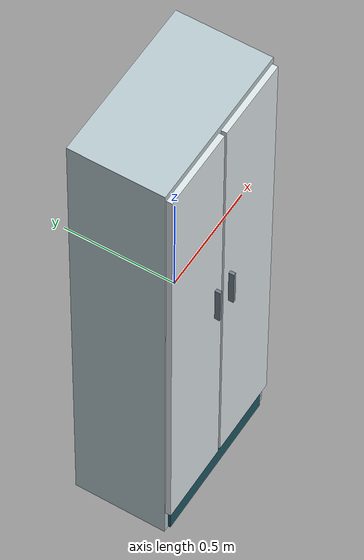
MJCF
<?xml version='1.0' encoding='utf-8'?>
<mujoco model="Storage cabinet | static procedural reference">
  <visual>
    <global offwidth="1000" offheight="600" />
  </visual>
  <asset>
    <texture type="skybox" builtin="gradient" rgb1=".92 .95 .97" rgb2=".70 .78 .84" width="512" height="3072" />
  </asset>
  <worldbody>
    <geom type="box" size="0.375 0.21 1.125" pos="0 0.0195 0" quat="1 0 0 0" rgba="0.730000019 0.800000012 0.819999993 1" contype="0" conaffinity="0" />
    <geom type="box" size="0.345 0.22 0.05" pos="0 0.0195 -1.075" quat="1 0 0 0" rgba="0.119999997 0.340000004 0.389999986 1" contype="0" conaffinity="0" />
    <geom type="box" size="0.1805 0.015 1.045" pos="-0.1875 -0.2005 0.05" quat="1 0 0 0" rgba="0.879999995 0.910000026 0.920000017 1" contype="0" conaffinity="0" />
    <geom type="box" size="0.007 0.012 0.09" pos="-0.05 -0.2275 0.09" quat="1 0 0 0" rgba="0.449999988 0.50999999 0.550000012 1" contype="0" conaffinity="0" />
    <geom type="box" size="0.1805 0.015 1.045" pos="0.1875 -0.2005 0.05" quat="1 0 0 0" rgba="0.879999995 0.910000026 0.920000017 1" contype="0" conaffinity="0" />
    <geom type="box" size="0.007 0.012 0.09" pos="0.05 -0.2275 0.09" quat="1 0 0 0" rgba="0.449999988 0.50999999 0.550000012 1" contype="0" conaffinity="0" />
  </worldbody>
</mujoco>
